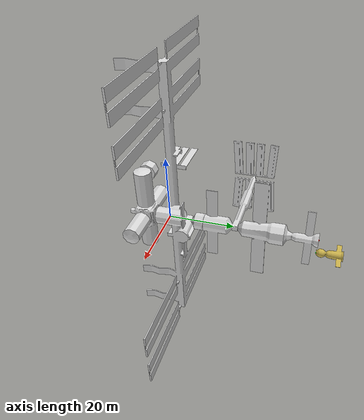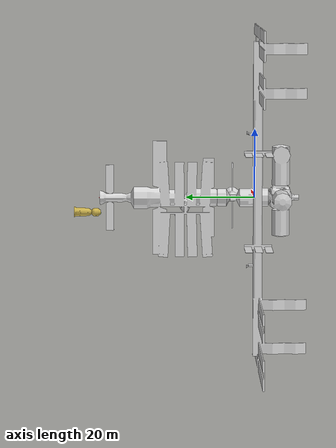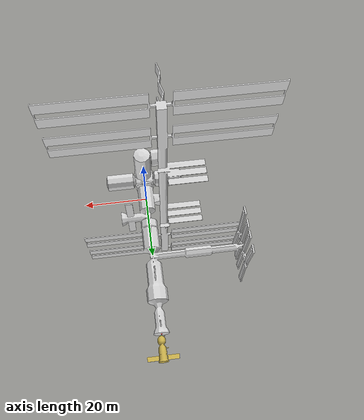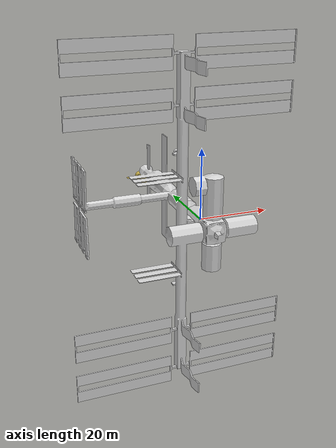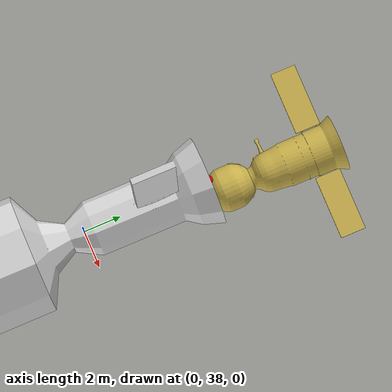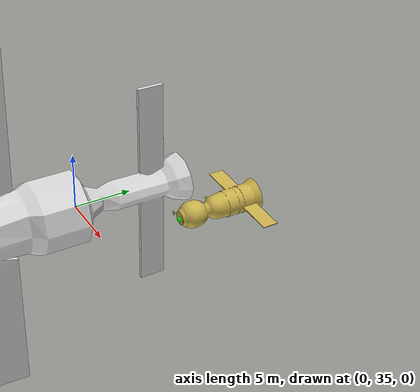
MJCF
<mujoco model="ISS_docking">
  <compiler angle="radian"/>

  <option timestep="0.01" gravity="0 0 0" integrator="implicitfast">
    <flag contact="disable"/>
  </option>

  <asset>
    <mesh name="iss_mesh" file="assets/ISS/ISS_lowpoly.obj"/>
    <mesh name="soyuz_mesh" file="assets/Soyuz/Soyuz_lowpoly.obj"/>
  </asset>

  <worldbody>
    <!-- ===================== ISS (target) ===================== -->
    <body name="iss_main" pos="0 0 0" quat="0.7071 0 0 -0.7071">
      <freejoint name="iss_free"/>
      <inertial pos="0 0 0" mass="420000" diaginertia="1.4e8 1.0e8 2.0e8"/>
      <geom name="iss_geom" type="mesh" mesh="iss_mesh" rgba="0.85 0.85 0.85 1"/>

      <!-- Docking port (ISS body frame): (-35.278, 0.0, -4.1379) m -->
      <!-- Lowpoly: (-44.931, 0, 0)m-->
      <body name="iss_dock_port" pos="-44.931 0.0 0.0">
        <geom name="iss_dock_geom" type="sphere" size="0.25" rgba="1 0 0 1"
              mass="0" contype="0" conaffinity="0"/>
        <site name="iss_dock_site" pos="0 0 0" size="0.2" rgba="0 1 0 1"/>
      </body>
    </body>

    <!-- ===================== Soyuz (chaser) ===================== -->
    <!-- Placed so its docking port sits ~4.5 m from the ISS port along the
         approach (-x) axis, +x face pointing toward the ISS. -->

    <body name="soyuz" pos="0.0 50.033833 -4.37365" quat="0.7071 0 0 -0.7071">
      <freejoint name="soyuz_free"/>
      <inertial pos="0.8865 0.2486 0.1480" mass="7000" diaginertia="1.0e4 3.0e4 3.0e4"/>
      <geom name="soyuz_geom" type="mesh" mesh="soyuz_mesh" rgba="0.8 0.7 0.3 1"/>

      <site name="soyuz_com" pos="0.8865 0.2486 0.1480" size="0.1" rgba="0.2 0.6 1 0.5"/>

      <!-- Docking port (Soyuz body frame): (-1.7743, 0.033833, 0.23575) m -->
      <!-- Lowpoly: (5.2267, 0.2358, -0.067) m -->
      <body name="soyuz_dock_port" pos="5.2267 0.2358 -0.067">
        <geom name="soyuz_dock_geom" type="sphere" size="0.25" rgba="0 1 0 1"
              mass="0" contype="0" conaffinity="0"/>
        <site name="soyuz_dock_site" pos="0 0 0" size="0.2" rgba="0 1 0 1"/>
      </body>
    </body>
  </worldbody>

  <!-- Conditional docking port: weld the two port frames together. Inactive
       during approach; when latched, soyuz_dock_port is pulled to coincide with
       iss_dock_port (relpose identity). -->
  <equality>
    <weld name="dock_latch" body1="iss_dock_port" body2="soyuz_dock_port"
          relpose="0 0 0 1 0 0 0" active="false" solref="0.1 1"/>
  </equality>

  <actuator>
    <!-- Translation thrusters (body-frame force) -->
    <motor name="thrust_x" site="soyuz_com" gear="1 0 0 0 0 0"
           ctrlrange="-400 400" ctrllimited="true"/>
    <motor name="thrust_y" site="soyuz_com" gear="0 1 0 0 0 0"
           ctrlrange="-400 400" ctrllimited="true"/>
    <motor name="thrust_z" site="soyuz_com" gear="0 0 1 0 0 0"
           ctrlrange="-400 400" ctrllimited="true"/>

    <!-- Reaction wheels (body-frame torque) -->
    <motor name="wheel_x" site="soyuz_com" gear="0 0 0 1 0 0"
           ctrlrange="-150 150" ctrllimited="true"/>
    <motor name="wheel_y" site="soyuz_com" gear="0 0 0 0 1 0"
           ctrlrange="-150 150" ctrllimited="true"/>
    <motor name="wheel_z" site="soyuz_com" gear="0 0 0 0 0 1"
           ctrlrange="-150 150" ctrllimited="true"/>
  </actuator>

  <sensor>
    <framepos name="iss_port_pos" objtype="site" objname="iss_dock_site"/>
    <framequat name="iss_port_quat" objtype="site" objname="iss_dock_site"/>
    <framepos name="soyuz_port_pos" objtype="site" objname="soyuz_dock_site"/>
    <framequat name="soyuz_port_quat" objtype="site" objname="soyuz_dock_site"/>
    <framepos name="soyuz_port_rel" objtype="site" objname="soyuz_dock_site"
              reftype="site" refname="iss_dock_site"/>
  </sensor>
</mujoco>
